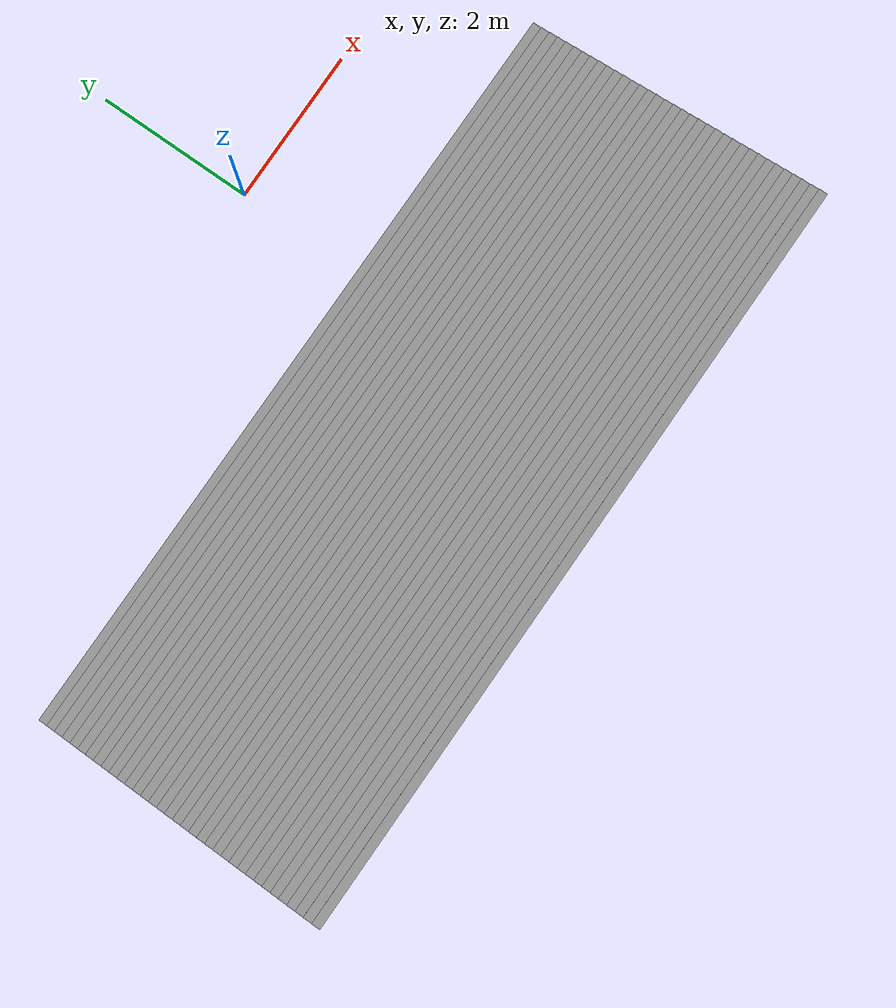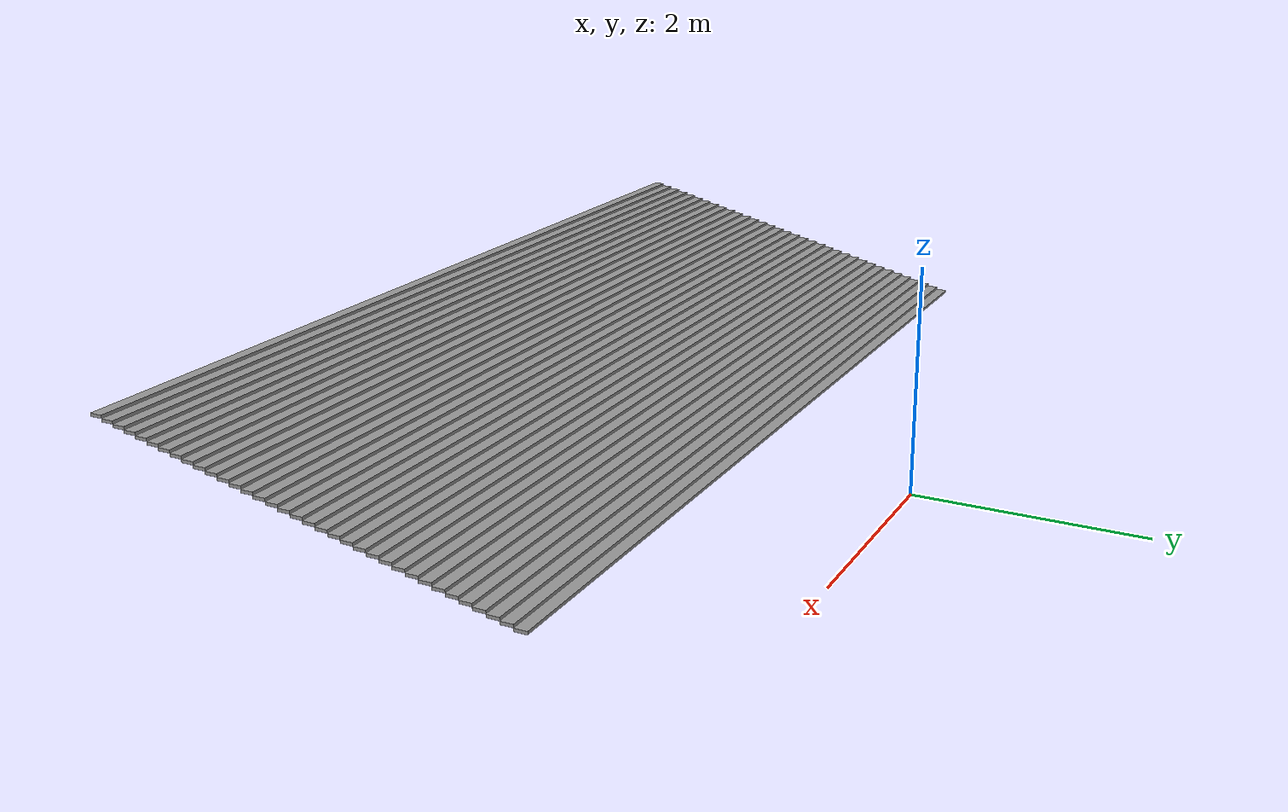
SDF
<?xml version='1.0'?>
<sdf version='1.7'>
  <model name='stair0703'>
    <pose>-1.35 -2.805 0 0 -0 0</pose>
    <link name='Stairs_1'>
      <visual name='Stairs_1_Visual_0'>
        <pose>-0 1.13786 0.014286 0 -0 0</pose>
        <geometry>
          <box>
            <size>10 0.114286 0.028571</size>
          </box>
        </geometry>
        <material>
          <script>
            <uri>file://media/materials/scripts/gazebo.material</uri>
            <name>Gazebo/Grey</name>
          </script>
          <ambient>1 1 1 1</ambient>
        </material>
        <meta>
          <layer>0</layer>
        </meta>
      </visual>
      <collision name='Stairs_1_Collision_0'>
        <geometry>
          <box>
            <size>10 0.114286 0.028571</size>
          </box>
        </geometry>
        <pose>-0 1.13786 0.014286 0 -0 0</pose>
      </collision>
      <visual name='Stairs_1_Visual_1'>
        <pose>-0 1.02357 0.042857 0 -0 0</pose>
        <geometry>
          <box>
            <size>10 0.114286 0.028571</size>
          </box>
        </geometry>
        <material>
          <script>
            <uri>file://media/materials/scripts/gazebo.material</uri>
            <name>Gazebo/Grey</name>
          </script>
          <ambient>1 1 1 1</ambient>
        </material>
        <meta>
          <layer>0</layer>
        </meta>
      </visual>
      <collision name='Stairs_1_Collision_1'>
        <geometry>
          <box>
            <size>10 0.114286 0.028571</size>
          </box>
        </geometry>
        <pose>-0 1.02357 0.042857 0 -0 0</pose>
      </collision>
      <visual name='Stairs_1_Visual_2'>
        <pose>-0 0.909286 0.071429 0 -0 0</pose>
        <geometry>
          <box>
            <size>10 0.114286 0.028571</size>
          </box>
        </geometry>
        <material>
          <script>
            <uri>file://media/materials/scripts/gazebo.material</uri>
            <name>Gazebo/Grey</name>
          </script>
          <ambient>1 1 1 1</ambient>
        </material>
        <meta>
          <layer>0</layer>
        </meta>
      </visual>
      <collision name='Stairs_1_Collision_2'>
        <geometry>
          <box>
            <size>10 0.114286 0.028571</size>
          </box>
        </geometry>
        <pose>-0 0.909286 0.071429 0 -0 0</pose>
      </collision>
      <visual name='Stairs_1_Visual_3'>
        <pose>-0 0.795 0.1 0 -0 0</pose>
        <geometry>
          <box>
            <size>10 0.114286 0.028571</size>
          </box>
        </geometry>
        <material>
          <script>
            <uri>file://media/materials/scripts/gazebo.material</uri>
            <name>Gazebo/Grey</name>
          </script>
          <ambient>1 1 1 1</ambient>
        </material>
        <meta>
          <layer>0</layer>
        </meta>
      </visual>
      <collision name='Stairs_1_Collision_3'>
        <geometry>
          <box>
            <size>10 0.114286 0.028571</size>
          </box>
        </geometry>
        <pose>-0 0.795 0.1 0 -0 0</pose>
      </collision>
      <visual name='Stairs_1_Visual_4'>
        <pose>-0 0.680714 0.128571 0 -0 0</pose>
        <geometry>
          <box>
            <size>10 0.114286 0.028571</size>
          </box>
        </geometry>
        <material>
          <script>
            <uri>file://media/materials/scripts/gazebo.material</uri>
            <name>Gazebo/Grey</name>
          </script>
          <ambient>1 1 1 1</ambient>
        </material>
        <meta>
          <layer>0</layer>
        </meta>
      </visual>
      <collision name='Stairs_1_Collision_4'>
        <geometry>
          <box>
            <size>10 0.114286 0.028571</size>
          </box>
        </geometry>
        <pose>-0 0.680714 0.128571 0 -0 0</pose>
      </collision>
      <visual name='Stairs_1_Visual_5'>
        <pose>-0 0.566429 0.157143 0 -0 0</pose>
        <geometry>
          <box>
            <size>10 0.114286 0.028571</size>
          </box>
        </geometry>
        <material>
          <script>
            <uri>file://media/materials/scripts/gazebo.material</uri>
            <name>Gazebo/Grey</name>
          </script>
          <ambient>1 1 1 1</ambient>
        </material>
        <meta>
          <layer>0</layer>
        </meta>
      </visual>
      <collision name='Stairs_1_Collision_5'>
        <geometry>
          <box>
            <size>10 0.114286 0.028571</size>
          </box>
        </geometry>
        <pose>-0 0.566429 0.157143 0 -0 0</pose>
      </collision>
      <visual name='Stairs_1_Visual_6'>
        <pose>-0 0.452143 0.185714 0 -0 0</pose>
        <geometry>
          <box>
            <size>10 0.114286 0.028571</size>
          </box>
        </geometry>
        <material>
          <script>
            <uri>file://media/materials/scripts/gazebo.material</uri>
            <name>Gazebo/Grey</name>
          </script>
          <ambient>1 1 1 1</ambient>
        </material>
        <meta>
          <layer>0</layer>
        </meta>
      </visual>
      <collision name='Stairs_1_Collision_6'>
        <geometry>
          <box>
            <size>10 0.114286 0.028571</size>
          </box>
        </geometry>
        <pose>-0 0.452143 0.185714 0 -0 0</pose>
      </collision>
      <visual name='Stairs_1_Visual_7'>
        <pose>-0 0.337857 0.214286 0 -0 0</pose>
        <geometry>
          <box>
            <size>10 0.114286 0.028571</size>
          </box>
        </geometry>
        <material>
          <script>
            <uri>file://media/materials/scripts/gazebo.material</uri>
            <name>Gazebo/Grey</name>
          </script>
          <ambient>1 1 1 1</ambient>
        </material>
        <meta>
          <layer>0</layer>
        </meta>
      </visual>
      <collision name='Stairs_1_Collision_7'>
        <geometry>
          <box>
            <size>10 0.114286 0.028571</size>
          </box>
        </geometry>
        <pose>-0 0.337857 0.214286 0 -0 0</pose>
      </collision>
      <visual name='Stairs_1_Visual_8'>
        <pose>-0 0.223571 0.242857 0 -0 0</pose>
        <geometry>
          <box>
            <size>10 0.114286 0.028571</size>
          </box>
        </geometry>
        <material>
          <script>
            <uri>file://media/materials/scripts/gazebo.material</uri>
            <name>Gazebo/Grey</name>
          </script>
          <ambient>1 1 1 1</ambient>
        </material>
        <meta>
          <layer>0</layer>
        </meta>
      </visual>
      <collision name='Stairs_1_Collision_8'>
        <geometry>
          <box>
            <size>10 0.114286 0.028571</size>
          </box>
        </geometry>
        <pose>-0 0.223571 0.242857 0 -0 0</pose>
      </collision>
      <visual name='Stairs_1_Visual_9'>
        <pose>-0 0.109286 0.271429 0 -0 0</pose>
        <geometry>
          <box>
            <size>10 0.114286 0.028571</size>
          </box>
        </geometry>
        <material>
          <script>
            <uri>file://media/materials/scripts/gazebo.material</uri>
            <name>Gazebo/Grey</name>
          </script>
          <ambient>1 1 1 1</ambient>
        </material>
        <meta>
          <layer>0</layer>
        </meta>
      </visual>
      <collision name='Stairs_1_Collision_9'>
        <geometry>
          <box>
            <size>10 0.114286 0.028571</size>
          </box>
        </geometry>
        <pose>-0 0.109286 0.271429 0 -0 0</pose>
      </collision>
      <visual name='Stairs_1_Visual_10'>
        <pose>-0 -0.005 0.3 0 -0 0</pose>
        <geometry>
          <box>
            <size>10 0.114286 0.028571</size>
          </box>
        </geometry>
        <material>
          <script>
            <uri>file://media/materials/scripts/gazebo.material</uri>
            <name>Gazebo/Grey</name>
          </script>
          <ambient>1 1 1 1</ambient>
        </material>
        <meta>
          <layer>0</layer>
        </meta>
      </visual>
      <collision name='Stairs_1_Collision_10'>
        <geometry>
          <box>
            <size>10 0.114286 0.028571</size>
          </box>
        </geometry>
        <pose>-0 -0.005 0.3 0 -0 0</pose>
      </collision>
      <visual name='Stairs_1_Visual_11'>
        <pose>-0 -0.119286 0.328571 0 -0 0</pose>
        <geometry>
          <box>
            <size>10 0.114286 0.028571</size>
          </box>
        </geometry>
        <material>
          <script>
            <uri>file://media/materials/scripts/gazebo.material</uri>
            <name>Gazebo/Grey</name>
          </script>
          <ambient>1 1 1 1</ambient>
        </material>
        <meta>
          <layer>0</layer>
        </meta>
      </visual>
      <collision name='Stairs_1_Collision_11'>
        <geometry>
          <box>
            <size>10 0.114286 0.028571</size>
          </box>
        </geometry>
        <pose>-0 -0.119286 0.328571 0 -0 0</pose>
      </collision>
      <visual name='Stairs_1_Visual_12'>
        <pose>-0 -0.233572 0.357143 0 -0 0</pose>
        <geometry>
          <box>
            <size>10 0.114286 0.028571</size>
          </box>
        </geometry>
        <material>
          <script>
            <uri>file://media/materials/scripts/gazebo.material</uri>
            <name>Gazebo/Grey</name>
          </script>
          <ambient>1 1 1 1</ambient>
        </material>
        <meta>
          <layer>0</layer>
        </meta>
      </visual>
      <collision name='Stairs_1_Collision_12'>
        <geometry>
          <box>
            <size>10 0.114286 0.028571</size>
          </box>
        </geometry>
        <pose>-0 -0.233572 0.357143 0 -0 0</pose>
      </collision>
      <visual name='Stairs_1_Visual_13'>
        <pose>-0 -0.347857 0.385714 0 -0 0</pose>
        <geometry>
          <box>
            <size>10 0.114286 0.028571</size>
          </box>
        </geometry>
        <material>
          <script>
            <uri>file://media/materials/scripts/gazebo.material</uri>
            <name>Gazebo/Grey</name>
          </script>
          <ambient>1 1 1 1</ambient>
        </material>
        <meta>
          <layer>0</layer>
        </meta>
      </visual>
      <collision name='Stairs_1_Collision_13'>
        <geometry>
          <box>
            <size>10 0.114286 0.028571</size>
          </box>
        </geometry>
        <pose>-0 -0.347857 0.385714 0 -0 0</pose>
      </collision>
      <visual name='Stairs_1_Visual_14'>
        <pose>-0 -0.462143 0.414286 0 -0 0</pose>
        <geometry>
          <box>
            <size>10 0.114286 0.028571</size>
          </box>
        </geometry>
        <material>
          <script>
            <uri>file://media/materials/scripts/gazebo.material</uri>
            <name>Gazebo/Grey</name>
          </script>
          <ambient>1 1 1 1</ambient>
        </material>
        <meta>
          <layer>0</layer>
        </meta>
      </visual>
      <collision name='Stairs_1_Collision_14'>
        <geometry>
          <box>
            <size>10 0.114286 0.028571</size>
          </box>
        </geometry>
        <pose>-0 -0.462143 0.414286 0 -0 0</pose>
      </collision>
      <visual name='Stairs_1_Visual_15'>
        <pose>-0 -0.576429 0.442857 0 -0 0</pose>
        <geometry>
          <box>
            <size>10 0.114286 0.028571</size>
          </box>
        </geometry>
        <material>
          <script>
            <uri>file://media/materials/scripts/gazebo.material</uri>
            <name>Gazebo/Grey</name>
          </script>
          <ambient>1 1 1 1</ambient>
        </material>
        <meta>
          <layer>0</layer>
        </meta>
      </visual>
      <collision name='Stairs_1_Collision_15'>
        <geometry>
          <box>
            <size>10 0.114286 0.028571</size>
          </box>
        </geometry>
        <pose>-0 -0.576429 0.442857 0 -0 0</pose>
      </collision>
      <visual name='Stairs_1_Visual_16'>
        <pose>-0 -0.690714 0.471429 0 -0 0</pose>
        <geometry>
          <box>
            <size>10 0.114286 0.028571</size>
          </box>
        </geometry>
        <material>
          <script>
            <uri>file://media/materials/scripts/gazebo.material</uri>
            <name>Gazebo/Grey</name>
          </script>
          <ambient>1 1 1 1</ambient>
        </material>
        <meta>
          <layer>0</layer>
        </meta>
      </visual>
      <collision name='Stairs_1_Collision_16'>
        <geometry>
          <box>
            <size>10 0.114286 0.028571</size>
          </box>
        </geometry>
        <pose>-0 -0.690714 0.471429 0 -0 0</pose>
      </collision>
      <visual name='Stairs_1_Visual_17'>
        <pose>-0 -0.805 0.5 0 -0 0</pose>
        <geometry>
          <box>
            <size>10 0.114286 0.028571</size>
          </box>
        </geometry>
        <material>
          <script>
            <uri>file://media/materials/scripts/gazebo.material</uri>
            <name>Gazebo/Grey</name>
          </script>
          <ambient>1 1 1 1</ambient>
        </material>
        <meta>
          <layer>0</layer>
        </meta>
      </visual>
      <collision name='Stairs_1_Collision_17'>
        <geometry>
          <box>
            <size>10 0.114286 0.028571</size>
          </box>
        </geometry>
        <pose>-0 -0.805 0.5 0 -0 0</pose>
      </collision>
      <visual name='Stairs_1_Visual_18'>
        <pose>-0 -0.919286 0.528571 0 -0 0</pose>
        <geometry>
          <box>
            <size>10 0.114286 0.028571</size>
          </box>
        </geometry>
        <material>
          <script>
            <uri>file://media/materials/scripts/gazebo.material</uri>
            <name>Gazebo/Grey</name>
          </script>
          <ambient>1 1 1 1</ambient>
        </material>
        <meta>
          <layer>0</layer>
        </meta>
      </visual>
      <collision name='Stairs_1_Collision_18'>
        <geometry>
          <box>
            <size>10 0.114286 0.028571</size>
          </box>
        </geometry>
        <pose>-0 -0.919286 0.528571 0 -0 0</pose>
      </collision>
      <visual name='Stairs_1_Visual_19'>
        <pose>-0 -1.03357 0.557143 0 -0 0</pose>
        <geometry>
          <box>
            <size>10 0.114286 0.028571</size>
          </box>
        </geometry>
        <material>
          <script>
            <uri>file://media/materials/scripts/gazebo.material</uri>
            <name>Gazebo/Grey</name>
          </script>
          <ambient>1 1 1 1</ambient>
        </material>
        <meta>
          <layer>0</layer>
        </meta>
      </visual>
      <collision name='Stairs_1_Collision_19'>
        <geometry>
          <box>
            <size>10 0.114286 0.028571</size>
          </box>
        </geometry>
        <pose>-0 -1.03357 0.557143 0 -0 0</pose>
      </collision>
      <visual name='Stairs_1_Visual_20'>
        <pose>-0 -1.14786 0.585714 0 -0 0</pose>
        <geometry>
          <box>
            <size>10 0.114286 0.028571</size>
          </box>
        </geometry>
        <material>
          <script>
            <uri>file://media/materials/scripts/gazebo.material</uri>
            <name>Gazebo/Grey</name>
          </script>
          <ambient>1 1 1 1</ambient>
        </material>
        <meta>
          <layer>0</layer>
        </meta>
      </visual>
      <collision name='Stairs_1_Collision_20'>
        <geometry>
          <box>
            <size>10 0.114286 0.028571</size>
          </box>
        </geometry>
        <pose>-0 -1.14786 0.585714 0 -0 0</pose>
      </collision>
      <visual name='Stairs_1_Visual_21'>
        <pose>-0 -1.26214 0.614286 0 -0 0</pose>
        <geometry>
          <box>
            <size>10 0.114286 0.028571</size>
          </box>
        </geometry>
        <material>
          <script>
            <uri>file://media/materials/scripts/gazebo.material</uri>
            <name>Gazebo/Grey</name>
          </script>
          <ambient>1 1 1 1</ambient>
        </material>
        <meta>
          <layer>0</layer>
        </meta>
      </visual>
      <collision name='Stairs_1_Collision_21'>
        <geometry>
          <box>
            <size>10 0.114286 0.028571</size>
          </box>
        </geometry>
        <pose>-0 -1.26214 0.614286 0 -0 0</pose>
      </collision>
      <visual name='Stairs_1_Visual_22'>
        <pose>-0 -1.37643 0.642857 0 -0 0</pose>
        <geometry>
          <box>
            <size>10 0.114286 0.028571</size>
          </box>
        </geometry>
        <material>
          <script>
            <uri>file://media/materials/scripts/gazebo.material</uri>
            <name>Gazebo/Grey</name>
          </script>
          <ambient>1 1 1 1</ambient>
        </material>
        <meta>
          <layer>0</layer>
        </meta>
      </visual>
      <collision name='Stairs_1_Collision_22'>
        <geometry>
          <box>
            <size>10 0.114286 0.028571</size>
          </box>
        </geometry>
        <pose>-0 -1.37643 0.642857 0 -0 0</pose>
      </collision>
      <visual name='Stairs_1_Visual_23'>
        <pose>-0 -1.49072 0.671429 0 -0 0</pose>
        <geometry>
          <box>
            <size>10 0.114286 0.028571</size>
          </box>
        </geometry>
        <material>
          <script>
            <uri>file://media/materials/scripts/gazebo.material</uri>
            <name>Gazebo/Grey</name>
          </script>
          <ambient>1 1 1 1</ambient>
        </material>
        <meta>
          <layer>0</layer>
        </meta>
      </visual>
      <collision name='Stairs_1_Collision_23'>
        <geometry>
          <box>
            <size>10 0.114286 0.028571</size>
          </box>
        </geometry>
        <pose>-0 -1.49072 0.671429 0 -0 0</pose>
      </collision>
      <visual name='Stairs_1_Visual_24'>
        <pose>-0 -1.605 0.7 0 -0 0</pose>
        <geometry>
          <box>
            <size>10 0.114286 0.028571</size>
          </box>
        </geometry>
        <material>
          <script>
            <uri>file://media/materials/scripts/gazebo.material</uri>
            <name>Gazebo/Grey</name>
          </script>
          <ambient>1 1 1 1</ambient>
        </material>
        <meta>
          <layer>0</layer>
        </meta>
      </visual>
      <collision name='Stairs_1_Collision_24'>
        <geometry>
          <box>
            <size>10 0.114286 0.028571</size>
          </box>
        </geometry>
        <pose>-0 -1.605 0.7 0 -0 0</pose>
      </collision>
      <visual name='Stairs_1_Visual_25'>
        <pose>-0 -1.71929 0.728571 0 -0 0</pose>
        <geometry>
          <box>
            <size>10 0.114286 0.028571</size>
          </box>
        </geometry>
        <material>
          <script>
            <uri>file://media/materials/scripts/gazebo.material</uri>
            <name>Gazebo/Grey</name>
          </script>
          <ambient>1 1 1 1</ambient>
        </material>
        <meta>
          <layer>0</layer>
        </meta>
      </visual>
      <collision name='Stairs_1_Collision_25'>
        <geometry>
          <box>
            <size>10 0.114286 0.028571</size>
          </box>
        </geometry>
        <pose>-0 -1.71929 0.728571 0 -0 0</pose>
      </collision>
      <visual name='Stairs_1_Visual_26'>
        <pose>-0 -1.83357 0.757143 0 -0 0</pose>
        <geometry>
          <box>
            <size>10 0.114286 0.028571</size>
          </box>
        </geometry>
        <material>
          <script>
            <uri>file://media/materials/scripts/gazebo.material</uri>
            <name>Gazebo/Grey</name>
          </script>
          <ambient>1 1 1 1</ambient>
        </material>
        <meta>
          <layer>0</layer>
        </meta>
      </visual>
      <collision name='Stairs_1_Collision_26'>
        <geometry>
          <box>
            <size>10 0.114286 0.028571</size>
          </box>
        </geometry>
        <pose>-0 -1.83357 0.757143 0 -0 0</pose>
      </collision>
      <visual name='Stairs_1_Visual_27'>
        <pose>-0 -1.94786 0.785714 0 -0 0</pose>
        <geometry>
          <box>
            <size>10 0.114286 0.028571</size>
          </box>
        </geometry>
        <material>
          <script>
            <uri>file://media/materials/scripts/gazebo.material</uri>
            <name>Gazebo/Grey</name>
          </script>
          <ambient>1 1 1 1</ambient>
        </material>
        <meta>
          <layer>0</layer>
        </meta>
      </visual>
      <collision name='Stairs_1_Collision_27'>
        <geometry>
          <box>
            <size>10 0.114286 0.028571</size>
          </box>
        </geometry>
        <pose>-0 -1.94786 0.785714 0 -0 0</pose>
      </collision>
      <visual name='Stairs_1_Visual_28'>
        <pose>-0 -2.06214 0.814286 0 -0 0</pose>
        <geometry>
          <box>
            <size>10 0.114286 0.028571</size>
          </box>
        </geometry>
        <material>
          <script>
            <uri>file://media/materials/scripts/gazebo.material</uri>
            <name>Gazebo/Grey</name>
          </script>
          <ambient>1 1 1 1</ambient>
        </material>
        <meta>
          <layer>0</layer>
        </meta>
      </visual>
      <collision name='Stairs_1_Collision_28'>
        <geometry>
          <box>
            <size>10 0.114286 0.028571</size>
          </box>
        </geometry>
        <pose>-0 -2.06214 0.814286 0 -0 0</pose>
      </collision>
      <visual name='Stairs_1_Visual_29'>
        <pose>-0 -2.17643 0.842857 0 -0 0</pose>
        <geometry>
          <box>
            <size>10 0.114286 0.028571</size>
          </box>
        </geometry>
        <material>
          <script>
            <uri>file://media/materials/scripts/gazebo.material</uri>
            <name>Gazebo/Grey</name>
          </script>
          <ambient>1 1 1 1</ambient>
        </material>
        <meta>
          <layer>0</layer>
        </meta>
      </visual>
      <collision name='Stairs_1_Collision_29'>
        <geometry>
          <box>
            <size>10 0.114286 0.028571</size>
          </box>
        </geometry>
        <pose>-0 -2.17643 0.842857 0 -0 0</pose>
      </collision>
      <visual name='Stairs_1_Visual_30'>
        <pose>-0 -2.29071 0.871429 0 -0 0</pose>
        <geometry>
          <box>
            <size>10 0.114286 0.028571</size>
          </box>
        </geometry>
        <material>
          <script>
            <uri>file://media/materials/scripts/gazebo.material</uri>
            <name>Gazebo/Grey</name>
          </script>
          <ambient>1 1 1 1</ambient>
        </material>
        <meta>
          <layer>0</layer>
        </meta>
      </visual>
      <collision name='Stairs_1_Collision_30'>
        <geometry>
          <box>
            <size>10 0.114286 0.028571</size>
          </box>
        </geometry>
        <pose>-0 -2.29071 0.871429 0 -0 0</pose>
      </collision>
      <visual name='Stairs_1_Visual_31'>
        <pose>-0 -2.405 0.9 0 -0 0</pose>
        <geometry>
          <box>
            <size>10 0.114286 0.028571</size>
          </box>
        </geometry>
        <material>
          <script>
            <uri>file://media/materials/scripts/gazebo.material</uri>
            <name>Gazebo/Grey</name>
          </script>
          <ambient>1 1 1 1</ambient>
        </material>
        <meta>
          <layer>0</layer>
        </meta>
      </visual>
      <collision name='Stairs_1_Collision_31'>
        <geometry>
          <box>
            <size>10 0.114286 0.028571</size>
          </box>
        </geometry>
        <pose>-0 -2.405 0.9 0 -0 0</pose>
      </collision>
      <visual name='Stairs_1_Visual_32'>
        <pose>-0 -2.51929 0.928571 0 -0 0</pose>
        <geometry>
          <box>
            <size>10 0.114286 0.028571</size>
          </box>
        </geometry>
        <material>
          <script>
            <uri>file://media/materials/scripts/gazebo.material</uri>
            <name>Gazebo/Grey</name>
          </script>
          <ambient>1 1 1 1</ambient>
        </material>
        <meta>
          <layer>0</layer>
        </meta>
      </visual>
      <collision name='Stairs_1_Collision_32'>
        <geometry>
          <box>
            <size>10 0.114286 0.028571</size>
          </box>
        </geometry>
        <pose>-0 -2.51929 0.928571 0 -0 0</pose>
      </collision>
      <visual name='Stairs_1_Visual_33'>
        <pose>-0 -2.63357 0.957143 0 -0 0</pose>
        <geometry>
          <box>
            <size>10 0.114286 0.028571</size>
          </box>
        </geometry>
        <material>
          <script>
            <uri>file://media/materials/scripts/gazebo.material</uri>
            <name>Gazebo/Grey</name>
          </script>
          <ambient>1 1 1 1</ambient>
        </material>
        <meta>
          <layer>0</layer>
        </meta>
      </visual>
      <collision name='Stairs_1_Collision_33'>
        <geometry>
          <box>
            <size>10 0.114286 0.028571</size>
          </box>
        </geometry>
        <pose>-0 -2.63357 0.957143 0 -0 0</pose>
      </collision>
      <visual name='Stairs_1_Visual_34'>
        <pose>-0 -2.74786 0.985714 0 -0 0</pose>
        <geometry>
          <box>
            <size>10 0.114286 0.028571</size>
          </box>
        </geometry>
        <material>
          <script>
            <uri>file://media/materials/scripts/gazebo.material</uri>
            <name>Gazebo/Grey</name>
          </script>
          <ambient>1 1 1 1</ambient>
        </material>
        <meta>
          <layer>0</layer>
        </meta>
      </visual>
      <collision name='Stairs_1_Collision_34'>
        <geometry>
          <box>
            <size>10 0.114286 0.028571</size>
          </box>
        </geometry>
        <pose>-0 -2.74786 0.985714 0 -0 0</pose>
      </collision>
    </link>
    <static>1</static>
  </model>
</sdf>
